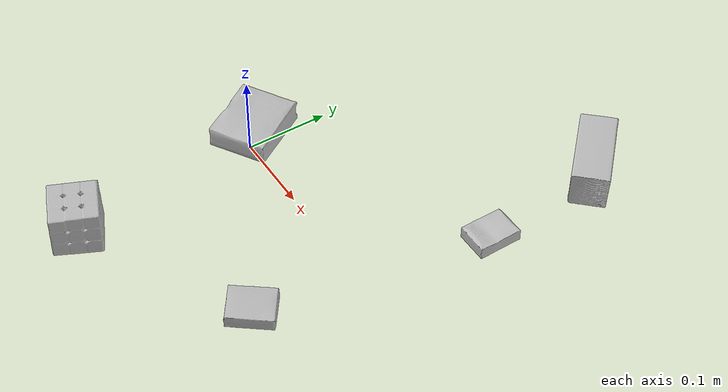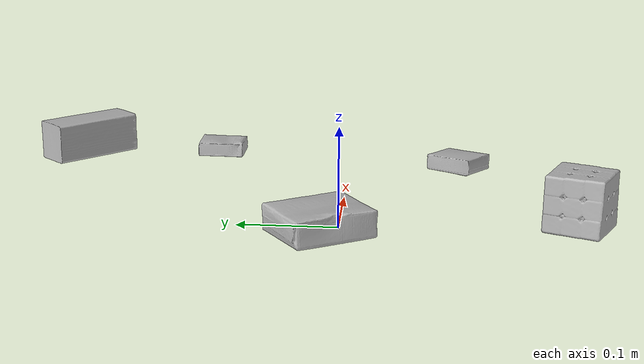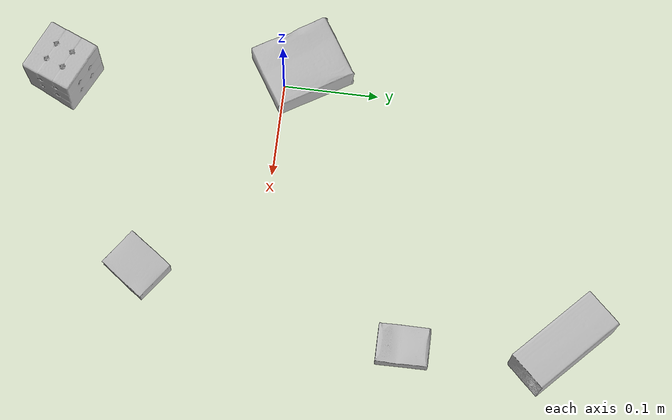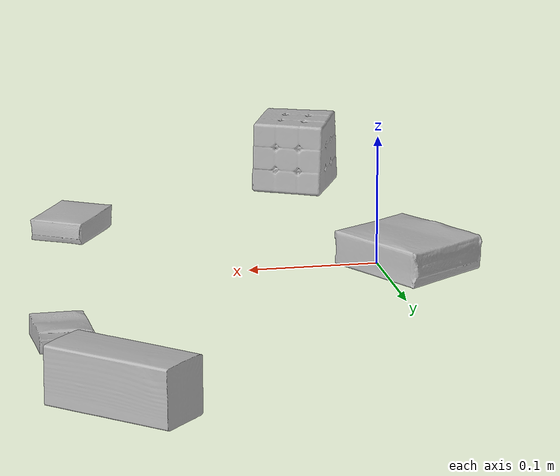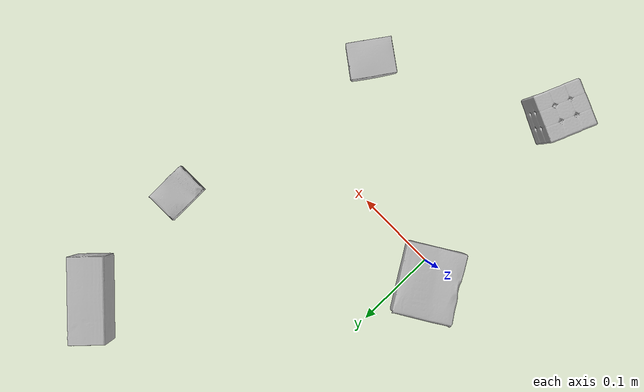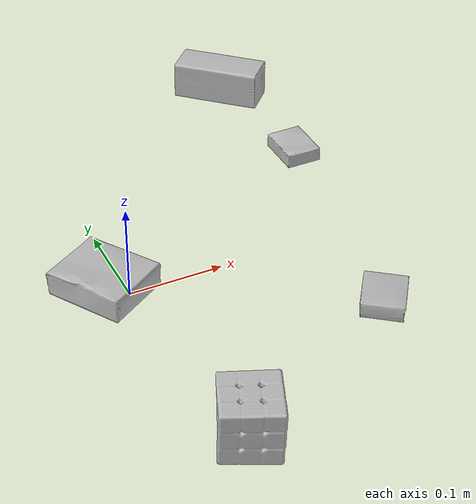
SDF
<sdf version="1.4">
  <world name="default">
    <light name="light1" type="point">
      <pose>0 0 1 0 0 0</pose>
      <diffuse>3 3 3 1</diffuse>
      <specular>3 3 3 1</specular>
    </light>
    <light name="light2" type="point">
      <pose>0 0.5 2 0 0 0</pose>
      <diffuse>1 1 1 1</diffuse>
      <specular>1 1 1 1</specular>
    </light>
    <light name="light3" type="point">
      <pose>0 0.5 2 0 0 0</pose>
      <diffuse>3 3 3 1</diffuse>
      <specular>3 3 3 1</specular>
    </light>
    <scene>
      <ambient>0.7 0.7 0.7</ambient>
    </scene>
    <model name="box1">
      <link name="link_box1">
        <collision name="default">
          <geometry>
            <mesh>
              <uri>model://rubiks_cube/collision_meshes/collision.obj</uri>
              <scale>1.0 1.0 1.0</scale>
            </mesh>
          </geometry>
          <surface>
            <friction>
              <ode>
                <mu>0.5</mu>
                <mu2>0.5</mu2>
              </ode>
            </friction>
          <contact>
        <ode>
            <max_vel>0</max_vel>
            <min_depth>0.0001</min_depth>
            <kp>1e8</kp>
        </ode>
    </contact></surface>
        </collision>
        <visual name="default">
          <geometry>
            <mesh>
              <uri>model://rubiks_cube/visual_meshes/visual.dae</uri>
              <scale>1.0 1.0 1.0</scale>
            </mesh>
          </geometry>
        </visual>
        <inertial>
          <mass>0.16542086005210876</mass>
          <pose>2.6721041649580002e-05 5.256967051536776e-05 -7.264316536748083e-06 -0.054673137900176624 -0.09813866632394339 -0.03445580911338559</pose>
          <inertia>
            <ixx>9.140613e-05</ixx>
            <iyy>9.097988e-05</iyy>
            <izz>9.216359e-05</izz>
            <ixy>0</ixy>
            <ixz>0</ixz>
            <iyz>0</iyz>
          </inertia>
        </inertial>
      </link>
      <pose>0.017800824716687202 -0.23055517673492432 0.028678977862000465 -2.9153815837254226e-06 -1.5234341652016603e-07 1.1608537322035446</pose>
    </model>
    <model name="box2">
      <link name="link_box2">
        <collision name="default">
          <geometry>
            <mesh>
              <uri>model://cracker_box/collision_meshes/collision.obj</uri>
              <scale>0.25 0.25 0.25</scale>
            </mesh>
          </geometry>
          <surface>
            <friction>
              <ode>
                <mu>0.5</mu>
                <mu2>0.5</mu2>
              </ode>
            </friction>
          <contact>
        <ode>
            <max_vel>0</max_vel>
            <min_depth>0.0001</min_depth>
            <kp>1e8</kp>
        </ode>
    </contact></surface>
        </collision>
        <visual name="default">
          <geometry>
            <mesh>
              <uri>model://cracker_box/visual_meshes/visual.dae</uri>
              <scale>0.25 0.25 0.25</scale>
            </mesh>
          </geometry>
        </visual>
        <inertial>
          <mass>0.04381135478615761</mass>
          <pose>0.00023660462466068566 6.358561222441494e-05 -0.0004257383698131889 -0.00031620747829542317 -0.011106489600678707 0.002546794302661479</pose>
          <inertia>
            <ixx>6.9647826e-06</ixx>
            <iyy>1.1500225e-05</iyy>
            <izz>1.6411877e-05</izz>
            <ixy>0</ixy>
            <ixz>0</ixz>
            <iyz>0</iyz>
          </inertia>
        </inertial>
      </link>
      <pose>0.26669302582740784 0.15533854067325592 0.009096029214560986 -0.014051223975650019 -0.005016321364700813 1.5713432240871015</pose>
    </model>
    <model name="box3">
      <link name="link_box3">
        <collision name="default">
          <geometry>
            <mesh>
              <uri>model://gelatin_box/collision_meshes/collision.obj</uri>
              <scale>1.0 1.0 1.0</scale>
            </mesh>
          </geometry>
          <surface>
            <friction>
              <ode>
                <mu>0.5</mu>
                <mu2>0.5</mu2>
              </ode>
            </friction>
          <contact>
        <ode>
            <max_vel>0</max_vel>
            <min_depth>0.0001</min_depth>
            <kp>1e8</kp>
        </ode>
    </contact></surface>
        </collision>
        <visual name="default">
          <geometry>
            <mesh>
              <uri>model://gelatin_box/visual_meshes/visual.dae</uri>
              <scale>1.0 1.0 1.0</scale>
            </mesh>
          </geometry>
        </visual>
        <inertial>
          <mass>0.23367169499397278</mass>
          <pose>0.0004319618456065655 0.00011156871914863586 -0.0003640321083366871 -0.0010503719733775277 -0.004755817758083372 0.016440561333906818</pose>
          <inertia>
            <ixx>0.00016495313</ixx>
            <iyy>0.00011782518</iyy>
            <izz>0.00025109548</izz>
            <ixy>0</ixy>
            <ixz>0</ixz>
            <iyz>0</iyz>
          </inertia>
        </inertial>
      </link>
      <pose>-0.020170602947473526 0.01712416484951973 0.015168321318924427 0.0055965755666932855 -0.007303551425729192 -2.590972332762261</pose>
    </model>
    <model name="box4">
      <link name="link_box4">
        <collision name="default">
          <geometry>
            <mesh>
              <uri>model://wood_block/collision_meshes/collision.obj</uri>
              <scale>0.5 0.5 0.5</scale>
            </mesh>
          </geometry>
          <surface>
            <friction>
              <ode>
                <mu>0.5</mu>
                <mu2>0.5</mu2>
              </ode>
            </friction>
          <contact>
        <ode>
            <max_vel>0</max_vel>
            <min_depth>0.0001</min_depth>
            <kp>1e8</kp>
        </ode>
    </contact></surface>
        </collision>
        <visual name="default">
          <geometry>
            <mesh>
              <uri>model://wood_block/visual_meshes/visual.dae</uri>
              <scale>0.5 0.5 0.5</scale>
            </mesh>
          </geometry>
        </visual>
        <inertial>
          <mass>0.20833587646484375</mass>
          <pose>-2.9066577553749084e-06 -0.000285404734313488 0.00013204291462898254 -0.05220975529367638 -0.0051926946165042134 -0.0068613779519224715</pose>
          <inertia>
            <ixx>6.9696216e-05</ixx>
            <iyy>0.0002201704</iyy>
            <izz>0.00021934687</izz>
            <ixy>0</ixy>
            <ixz>0</ixz>
            <iyz>0</iyz>
          </inertia>
        </inertial>
      </link>
      <pose>0.24790708720684052 0.31267550587654114 0.022629274055361748 -0.005208378867531229 0.00571880192376453 -0.7608542558645637</pose>
    </model>
    <model name="box5">
      <link name="link_box5">
        <collision name="default">
          <geometry>
            <mesh>
              <uri>model://pudding_box/collision_meshes/collision.obj</uri>
              <scale>0.5 0.5 0.5</scale>
            </mesh>
          </geometry>
          <surface>
            <friction>
              <ode>
                <mu>0.5</mu>
                <mu2>0.5</mu2>
              </ode>
            </friction>
          <contact>
        <ode>
            <max_vel>0</max_vel>
            <min_depth>0.0001</min_depth>
            <kp>1e8</kp>
        </ode>
    </contact></surface>
        </collision>
        <visual name="default">
          <geometry>
            <mesh>
              <uri>model://pudding_box/visual_meshes/visual.dae</uri>
              <scale>0.5 0.5 0.5</scale>
            </mesh>
          </geometry>
        </visual>
        <inertial>
          <mass>0.032720133662223816</mass>
          <pose>0.00024474109522998333 0.0004033942532259971 -0.0002594413817860186 0.005213102275410761 -0.0066037963999523224 0.020079827026921356</pose>
          <inertia>
            <ixx>9.2471055e-06</ixx>
            <iyy>6.221519e-06</iyy>
            <izz>1.3655769e-05</izz>
            <ixy>0</ixy>
            <ixz>0</ixz>
            <iyz>0</iyz>
          </inertia>
        </inertial>
      </link>
      <pose>0.21770045161247253 -0.1224767416715622 0.009862902574241161 0.022348404852401797 -0.011391819127943948 2.5190386221272085</pose>
    </model>
  <physics type="ode">
      <max_contacts>50</max_contacts>
      <ode>
        <solver>
          <type>quick</type>
          <iters>75</iters>
        </solver>
        <constraints>
          <contact_max_correcting_vel>0</contact_max_correcting_vel>
          <contact_surface_layer>0</contact_surface_layer>
        </constraints>
      </ode>
    </physics></world>
</sdf>
